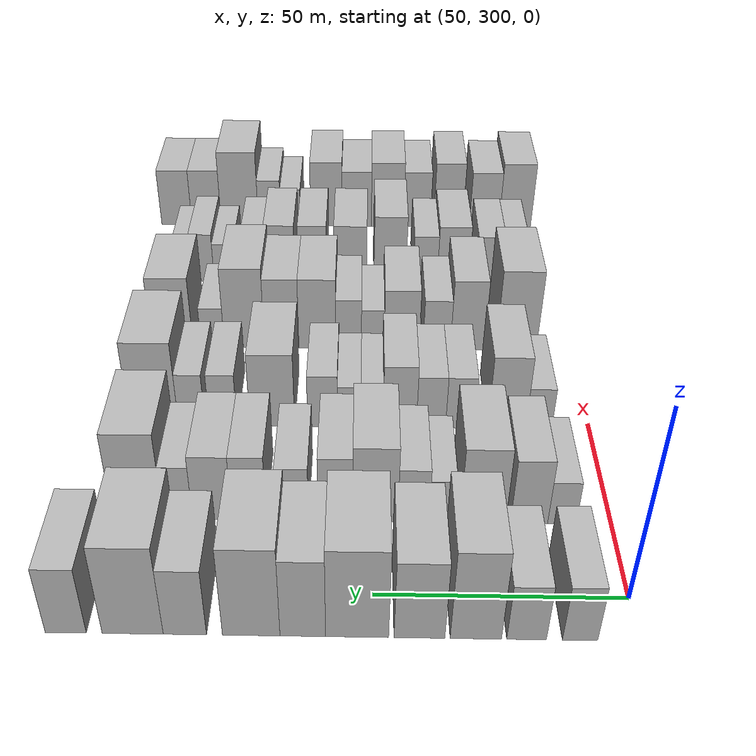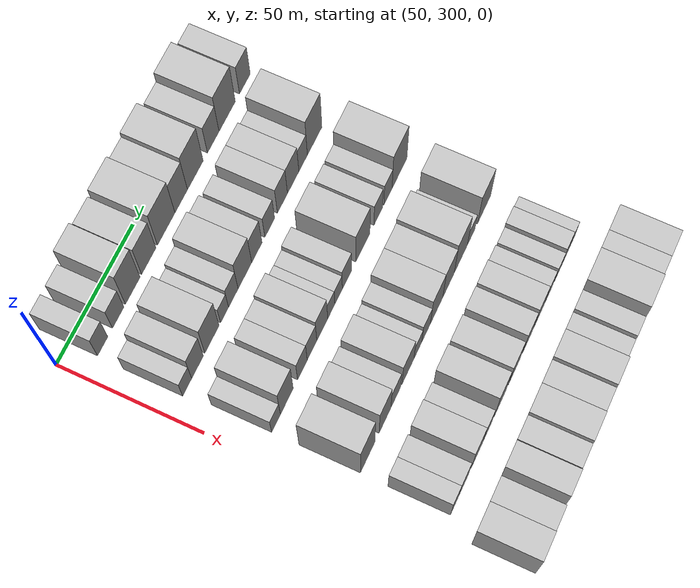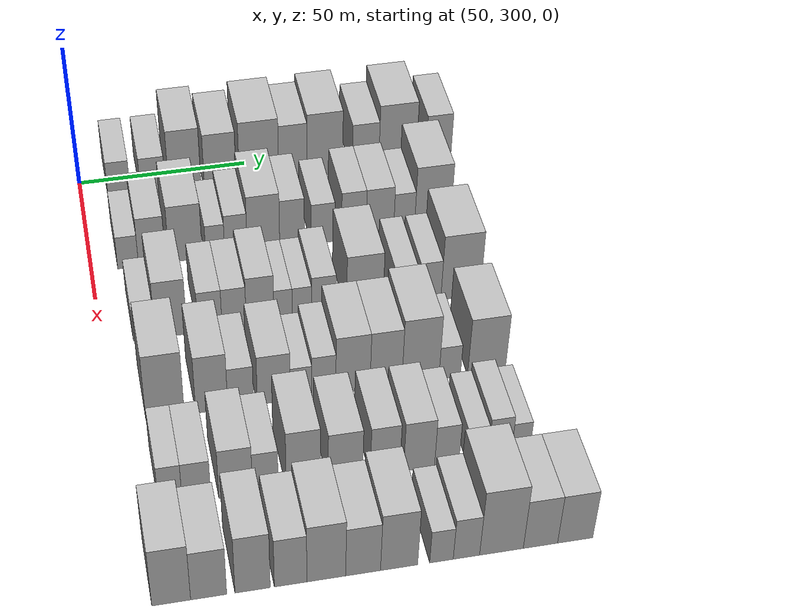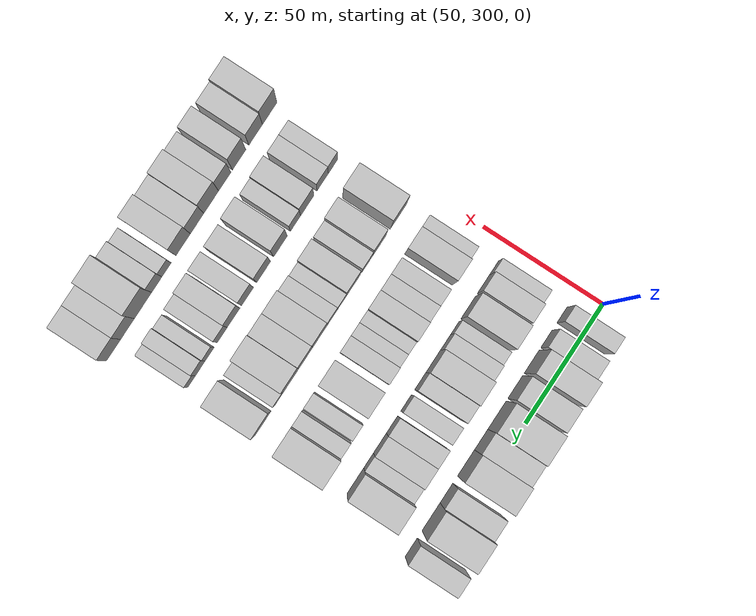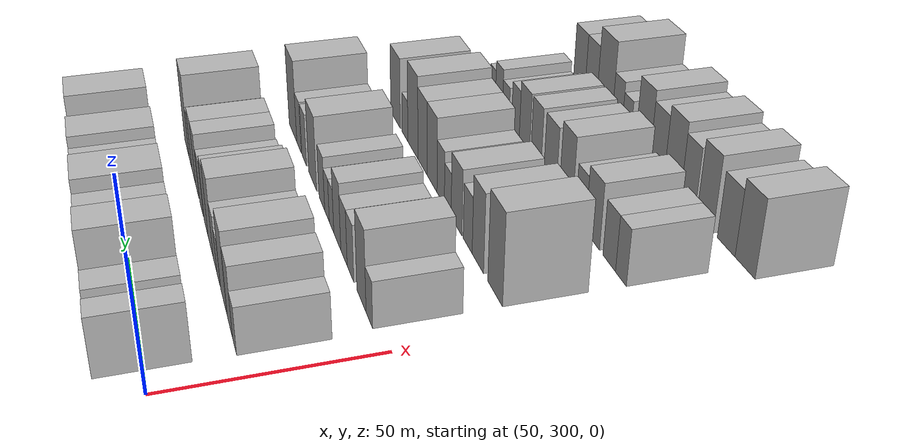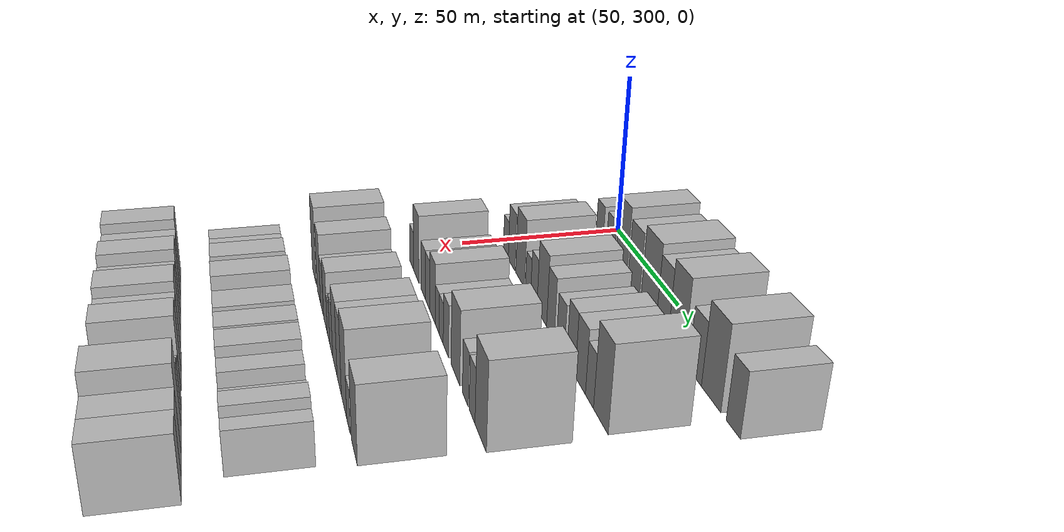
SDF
<sdf version="1.6">
 <world name="default">
  <model name="building_93">
   <static>1</static>
   <pose>50.0000 311.0892 0 0.000000 0.000000 0.000000</pose>
   <link name="link">
    <pose>0 0 7.50 0 0 0</pose>
    <collision name="collision"><geometry><box><size>20.0000 6.6241 15.0000</size></box></geometry></collision>
    <visual name="visual">
     <cast_shadows>0</cast_shadows>
     <geometry><box><size>20.0000 6.6241 15.0000</size></box></geometry>
     <material>
      <script>
       <uri>model://HANNAS_wall/materials/scripts</uri>
       <uri>model://HANNAS_wall/materials/textures</uri>
       <name>vrc/HANNAS_wall</name>
      </script>
     </material>
    </visual>
   </link>
  </model>
  <model name="building_94">
   <static>1</static>
   <pose>50.0000 321.1216 0 0.000000 0.000000 0.000000</pose>
   <link name="link">
    <pose>0 0 7.50 0 0 0</pose>
    <collision name="collision"><geometry><box><size>20.0000 7.4407 15.0000</size></box></geometry></collision>
    <visual name="visual">
     <cast_shadows>0</cast_shadows>
     <geometry><box><size>20.0000 7.4407 15.0000</size></box></geometry>
     <material>
      <script>
       <uri>model://HANNAS_wall/materials/scripts</uri>
       <uri>model://HANNAS_wall/materials/textures</uri>
       <name>vrc/HANNAS_wall</name>
      </script>
     </material>
    </visual>
   </link>
  </model>
  <model name="building_95">
   <static>1</static>
   <pose>50.0000 330.6634 0 0.000000 0.000000 0.000000</pose>
   <link name="link">
    <pose>0 0 12.00 0 0 0</pose>
    <collision name="collision"><geometry><box><size>20.0000 9.6430 24.0000</size></box></geometry></collision>
    <visual name="visual">
     <cast_shadows>0</cast_shadows>
     <geometry><box><size>20.0000 9.6430 24.0000</size></box></geometry>
     <material>
      <script>
       <uri>model://HANNAS_wall/materials/scripts</uri>
       <uri>model://HANNAS_wall/materials/textures</uri>
       <name>vrc/HANNAS_wall</name>
      </script>
     </material>
    </visual>
   </link>
  </model>
  <model name="building_96">
   <static>1</static>
   <pose>50.0000 341.2719 0 0.000000 0.000000 0.000000</pose>
   <link name="link">
    <pose>0 0 10.50 0 0 0</pose>
    <collision name="collision"><geometry><box><size>20.0000 9.5740 21.0000</size></box></geometry></collision>
    <visual name="visual">
     <cast_shadows>0</cast_shadows>
     <geometry><box><size>20.0000 9.5740 21.0000</size></box></geometry>
     <material>
      <script>
       <uri>model://HANNAS_wall/materials/scripts</uri>
       <uri>model://HANNAS_wall/materials/textures</uri>
       <name>vrc/HANNAS_wall</name>
      </script>
     </material>
    </visual>
   </link>
  </model>
  <model name="building_97">
   <static>1</static>
   <pose>50.0000 353.0000 0 0.000000 0.000000 0.000000</pose>
   <link name="link">
    <pose>0 0 12.00 0 0 0</pose>
    <collision name="collision"><geometry><box><size>20.0000 11.8821 24.0000</size></box></geometry></collision>
    <visual name="visual">
     <cast_shadows>0</cast_shadows>
     <geometry><box><size>20.0000 11.8821 24.0000</size></box></geometry>
     <material>
      <script>
       <uri>model://HANNAS_wall/materials/scripts</uri>
       <uri>model://HANNAS_wall/materials/textures</uri>
       <name>vrc/HANNAS_wall</name>
      </script>
     </material>
    </visual>
   </link>
  </model>
  <model name="building_98">
   <static>1</static>
   <pose>50.0000 363.2446 0 0.000000 0.000000 0.000000</pose>
   <link name="link">
    <pose>0 0 10.50 0 0 0</pose>
    <collision name="collision"><geometry><box><size>20.0000 8.6070 21.0000</size></box></geometry></collision>
    <visual name="visual">
     <cast_shadows>0</cast_shadows>
     <geometry><box><size>20.0000 8.6070 21.0000</size></box></geometry>
     <material>
      <script>
       <uri>model://HANNAS_wall/materials/scripts</uri>
       <uri>model://HANNAS_wall/materials/textures</uri>
       <name>vrc/HANNAS_wall</name>
      </script>
     </material>
    </visual>
   </link>
  </model>
  <model name="building_99">
   <static>1</static>
   <pose>50.0000 372.9853 0 0.000000 0.000000 0.000000</pose>
   <link name="link">
    <pose>0 0 12.00 0 0 0</pose>
    <collision name="collision"><geometry><box><size>20.0000 10.8745 24.0000</size></box></geometry></collision>
    <visual name="visual">
     <cast_shadows>0</cast_shadows>
     <geometry><box><size>20.0000 10.8745 24.0000</size></box></geometry>
     <material>
      <script>
       <uri>model://HANNAS_wall/materials/scripts</uri>
       <uri>model://HANNAS_wall/materials/textures</uri>
       <name>vrc/HANNAS_wall</name>
      </script>
     </material>
    </visual>
   </link>
  </model>
  <model name="building_100">
   <static>1</static>
   <pose>50.0000 385.5230 0 0.000000 0.000000 0.000000</pose>
   <link name="link">
    <pose>0 0 9.00 0 0 0</pose>
    <collision name="collision"><geometry><box><size>20.0000 8.2008 18.0000</size></box></geometry></collision>
    <visual name="visual">
     <cast_shadows>0</cast_shadows>
     <geometry><box><size>20.0000 8.2008 18.0000</size></box></geometry>
     <material>
      <script>
       <uri>model://HANNAS_wall/materials/scripts</uri>
       <uri>model://HANNAS_wall/materials/textures</uri>
       <name>vrc/HANNAS_wall</name>
      </script>
     </material>
    </visual>
   </link>
  </model>
  <model name="building_101">
   <static>1</static>
   <pose>50.0000 395.4213 0 0.000000 0.000000 0.000000</pose>
   <link name="link">
    <pose>0 0 12.00 0 0 0</pose>
    <collision name="collision"><geometry><box><size>20.0000 11.5959 24.0000</size></box></geometry></collision>
    <visual name="visual">
     <cast_shadows>0</cast_shadows>
     <geometry><box><size>20.0000 11.5959 24.0000</size></box></geometry>
     <material>
      <script>
       <uri>model://HANNAS_wall/materials/scripts</uri>
       <uri>model://HANNAS_wall/materials/textures</uri>
       <name>vrc/HANNAS_wall</name>
      </script>
     </material>
    </visual>
   </link>
  </model>
  <model name="building_102">
   <static>1</static>
   <pose>50.0000 408.1206 0 0.000000 0.000000 0.000000</pose>
   <link name="link">
    <pose>0 0 9.00 0 0 0</pose>
    <collision name="collision"><geometry><box><size>20.0000 7.8028 18.0000</size></box></geometry></collision>
    <visual name="visual">
     <cast_shadows>0</cast_shadows>
     <geometry><box><size>20.0000 7.8028 18.0000</size></box></geometry>
     <material>
      <script>
       <uri>model://HANNAS_wall/materials/scripts</uri>
       <uri>model://HANNAS_wall/materials/textures</uri>
       <name>vrc/HANNAS_wall</name>
      </script>
     </material>
    </visual>
   </link>
  </model>
  <model name="building_206">
   <static>1</static>
   <pose>79.0000 310.3980 0 0.000000 0.000000 0.000000</pose>
   <link name="link">
    <pose>0 0 6.00 0 0 0</pose>
    <collision name="collision"><geometry><box><size>20.0000 5.9657 12.0000</size></box></geometry></collision>
    <visual name="visual">
     <cast_shadows>0</cast_shadows>
     <geometry><box><size>20.0000 5.9657 12.0000</size></box></geometry>
     <material>
      <script>
       <uri>model://HANNAS_wall/materials/scripts</uri>
       <uri>model://HANNAS_wall/materials/textures</uri>
       <name>vrc/HANNAS_wall</name>
      </script>
     </material>
    </visual>
   </link>
  </model>
  <model name="building_207">
   <static>1</static>
   <pose>79.0000 317.2616 0 0.000000 0.000000 0.000000</pose>
   <link name="link">
    <pose>0 0 9.00 0 0 0</pose>
    <collision name="collision"><geometry><box><size>20.0000 7.7615 18.0000</size></box></geometry></collision>
    <visual name="visual">
     <cast_shadows>0</cast_shadows>
     <geometry><box><size>20.0000 7.7615 18.0000</size></box></geometry>
     <material>
      <script>
       <uri>model://HANNAS_wall/materials/scripts</uri>
       <uri>model://HANNAS_wall/materials/textures</uri>
       <name>vrc/HANNAS_wall</name>
      </script>
     </material>
    </visual>
   </link>
  </model>
  <model name="building_208">
   <static>1</static>
   <pose>79.0000 326.9318 0 0.000000 0.000000 0.000000</pose>
   <link name="link">
    <pose>0 0 10.50 0 0 0</pose>
    <collision name="collision"><geometry><box><size>20.0000 9.5789 21.0000</size></box></geometry></collision>
    <visual name="visual">
     <cast_shadows>0</cast_shadows>
     <geometry><box><size>20.0000 9.5789 21.0000</size></box></geometry>
     <material>
      <script>
       <uri>model://HANNAS_wall/materials/scripts</uri>
       <uri>model://HANNAS_wall/materials/textures</uri>
       <name>vrc/HANNAS_wall</name>
      </script>
     </material>
    </visual>
   </link>
  </model>
  <model name="building_209">
   <static>1</static>
   <pose>79.0000 335.4626 0 0.000000 0.000000 0.000000</pose>
   <link name="link">
    <pose>0 0 6.00 0 0 0</pose>
    <collision name="collision"><geometry><box><size>20.0000 5.4826 12.0000</size></box></geometry></collision>
    <visual name="visual">
     <cast_shadows>0</cast_shadows>
     <geometry><box><size>20.0000 5.4826 12.0000</size></box></geometry>
     <material>
      <script>
       <uri>model://HANNAS_wall/materials/scripts</uri>
       <uri>model://HANNAS_wall/materials/textures</uri>
       <name>vrc/HANNAS_wall</name>
      </script>
     </material>
    </visual>
   </link>
  </model>
  <model name="building_210">
   <static>1</static>
   <pose>79.0000 341.4721 0 0.000000 0.000000 0.000000</pose>
   <link name="link">
    <pose>0 0 7.50 0 0 0</pose>
    <collision name="collision"><geometry><box><size>20.0000 6.5364 15.0000</size></box></geometry></collision>
    <visual name="visual">
     <cast_shadows>0</cast_shadows>
     <geometry><box><size>20.0000 6.5364 15.0000</size></box></geometry>
     <material>
      <script>
       <uri>model://HANNAS_wall/materials/scripts</uri>
       <uri>model://HANNAS_wall/materials/textures</uri>
       <name>vrc/HANNAS_wall</name>
      </script>
     </material>
    </visual>
   </link>
  </model>
  <model name="building_211">
   <static>1</static>
   <pose>79.0000 349.4715 0 0.000000 0.000000 0.000000</pose>
   <link name="link">
    <pose>0 0 10.50 0 0 0</pose>
    <collision name="collision"><geometry><box><size>20.0000 9.4624 21.0000</size></box></geometry></collision>
    <visual name="visual">
     <cast_shadows>0</cast_shadows>
     <geometry><box><size>20.0000 9.4624 21.0000</size></box></geometry>
     <material>
      <script>
       <uri>model://HANNAS_wall/materials/scripts</uri>
       <uri>model://HANNAS_wall/materials/textures</uri>
       <name>vrc/HANNAS_wall</name>
      </script>
     </material>
    </visual>
   </link>
  </model>
  <model name="building_212">
   <static>1</static>
   <pose>79.0000 357.8078 0 0.000000 0.000000 0.000000</pose>
   <link name="link">
    <pose>0 0 9.00 0 0 0</pose>
    <collision name="collision"><geometry><box><size>20.0000 7.2101 18.0000</size></box></geometry></collision>
    <visual name="visual">
     <cast_shadows>0</cast_shadows>
     <geometry><box><size>20.0000 7.2101 18.0000</size></box></geometry>
     <material>
      <script>
       <uri>model://HANNAS_wall/materials/scripts</uri>
       <uri>model://HANNAS_wall/materials/textures</uri>
       <name>vrc/HANNAS_wall</name>
      </script>
     </material>
    </visual>
   </link>
  </model>
  <model name="building_213">
   <static>1</static>
   <pose>79.0000 366.8582 0 0.000000 0.000000 0.000000</pose>
   <link name="link">
    <pose>0 0 7.50 0 0 0</pose>
    <collision name="collision"><geometry><box><size>20.0000 6.8907 15.0000</size></box></geometry></collision>
    <visual name="visual">
     <cast_shadows>0</cast_shadows>
     <geometry><box><size>20.0000 6.8907 15.0000</size></box></geometry>
     <material>
      <script>
       <uri>model://HANNAS_wall/materials/scripts</uri>
       <uri>model://HANNAS_wall/materials/textures</uri>
       <name>vrc/HANNAS_wall</name>
      </script>
     </material>
    </visual>
   </link>
  </model>
  <model name="building_214">
   <static>1</static>
   <pose>79.0000 375.9228 0 0.000000 0.000000 0.000000</pose>
   <link name="link">
    <pose>0 0 9.00 0 0 0</pose>
    <collision name="collision"><geometry><box><size>20.0000 7.2384 18.0000</size></box></geometry></collision>
    <visual name="visual">
     <cast_shadows>0</cast_shadows>
     <geometry><box><size>20.0000 7.2384 18.0000</size></box></geometry>
     <material>
      <script>
       <uri>model://HANNAS_wall/materials/scripts</uri>
       <uri>model://HANNAS_wall/materials/textures</uri>
       <name>vrc/HANNAS_wall</name>
      </script>
     </material>
    </visual>
   </link>
  </model>
  <model name="building_215">
   <static>1</static>
   <pose>79.0000 383.6614 0 0.000000 0.000000 0.000000</pose>
   <link name="link">
    <pose>0 0 9.00 0 0 0</pose>
    <collision name="collision"><geometry><box><size>20.0000 8.2389 18.0000</size></box></geometry></collision>
    <visual name="visual">
     <cast_shadows>0</cast_shadows>
     <geometry><box><size>20.0000 8.2389 18.0000</size></box></geometry>
     <material>
      <script>
       <uri>model://HANNAS_wall/materials/scripts</uri>
       <uri>model://HANNAS_wall/materials/textures</uri>
       <name>vrc/HANNAS_wall</name>
      </script>
     </material>
    </visual>
   </link>
  </model>
  <model name="building_216">
   <static>1</static>
   <pose>79.0000 390.8860 0 0.000000 0.000000 0.000000</pose>
   <link name="link">
    <pose>0 0 7.50 0 0 0</pose>
    <collision name="collision"><geometry><box><size>20.0000 6.2103 15.0000</size></box></geometry></collision>
    <visual name="visual">
     <cast_shadows>0</cast_shadows>
     <geometry><box><size>20.0000 6.2103 15.0000</size></box></geometry>
     <material>
      <script>
       <uri>model://HANNAS_wall/materials/scripts</uri>
       <uri>model://HANNAS_wall/materials/textures</uri>
       <name>vrc/HANNAS_wall</name>
      </script>
     </material>
    </visual>
   </link>
  </model>
  <model name="building_217">
   <static>1</static>
   <pose>79.0000 399.3479 0 0.000000 0.000000 0.000000</pose>
   <link name="link">
    <pose>0 0 12.00 0 0 0</pose>
    <collision name="collision"><geometry><box><size>20.0000 10.7135 24.0000</size></box></geometry></collision>
    <visual name="visual">
     <cast_shadows>0</cast_shadows>
     <geometry><box><size>20.0000 10.7135 24.0000</size></box></geometry>
     <material>
      <script>
       <uri>model://HANNAS_wall/materials/scripts</uri>
       <uri>model://HANNAS_wall/materials/textures</uri>
       <name>vrc/HANNAS_wall</name>
      </script>
     </material>
    </visual>
   </link>
  </model>
  <model name="building_324">
   <static>1</static>
   <pose>108.0000 311.6133 0 0.000000 0.000000 0.000000</pose>
   <link name="link">
    <pose>0 0 6.00 0 0 0</pose>
    <collision name="collision"><geometry><box><size>20.0000 5.9825 12.0000</size></box></geometry></collision>
    <visual name="visual">
     <cast_shadows>0</cast_shadows>
     <geometry><box><size>20.0000 5.9825 12.0000</size></box></geometry>
     <material>
      <script>
       <uri>model://HANNAS_wall/materials/scripts</uri>
       <uri>model://HANNAS_wall/materials/textures</uri>
       <name>vrc/HANNAS_wall</name>
      </script>
     </material>
    </visual>
   </link>
  </model>
  <model name="building_325">
   <static>1</static>
   <pose>108.0000 318.9940 0 0.000000 0.000000 0.000000</pose>
   <link name="link">
    <pose>0 0 10.50 0 0 0</pose>
    <collision name="collision"><geometry><box><size>20.0000 8.7790 21.0000</size></box></geometry></collision>
    <visual name="visual">
     <cast_shadows>0</cast_shadows>
     <geometry><box><size>20.0000 8.7790 21.0000</size></box></geometry>
     <material>
      <script>
       <uri>model://HANNAS_wall/materials/scripts</uri>
       <uri>model://HANNAS_wall/materials/textures</uri>
       <name>vrc/HANNAS_wall</name>
      </script>
     </material>
    </visual>
   </link>
  </model>
  <model name="building_326">
   <static>1</static>
   <pose>108.0000 329.7306 0 0.000000 0.000000 0.000000</pose>
   <link name="link">
    <pose>0 0 7.50 0 0 0</pose>
    <collision name="collision"><geometry><box><size>20.0000 6.6942 15.0000</size></box></geometry></collision>
    <visual name="visual">
     <cast_shadows>0</cast_shadows>
     <geometry><box><size>20.0000 6.6942 15.0000</size></box></geometry>
     <material>
      <script>
       <uri>model://HANNAS_wall/materials/scripts</uri>
       <uri>model://HANNAS_wall/materials/textures</uri>
       <name>vrc/HANNAS_wall</name>
      </script>
     </material>
    </visual>
   </link>
  </model>
  <model name="building_327">
   <static>1</static>
   <pose>108.0000 336.4426 0 0.000000 0.000000 0.000000</pose>
   <link name="link">
    <pose>0 0 7.50 0 0 0</pose>
    <collision name="collision"><geometry><box><size>20.0000 6.7298 15.0000</size></box></geometry></collision>
    <visual name="visual">
     <cast_shadows>0</cast_shadows>
     <geometry><box><size>20.0000 6.7298 15.0000</size></box></geometry>
     <material>
      <script>
       <uri>model://HANNAS_wall/materials/scripts</uri>
       <uri>model://HANNAS_wall/materials/textures</uri>
       <name>vrc/HANNAS_wall</name>
      </script>
     </material>
    </visual>
   </link>
  </model>
  <model name="building_328">
   <static>1</static>
   <pose>108.0000 343.6723 0 0.000000 0.000000 0.000000</pose>
   <link name="link">
    <pose>0 0 9.00 0 0 0</pose>
    <collision name="collision"><geometry><box><size>20.0000 7.7295 18.0000</size></box></geometry></collision>
    <visual name="visual">
     <cast_shadows>0</cast_shadows>
     <geometry><box><size>20.0000 7.7295 18.0000</size></box></geometry>
     <material>
      <script>
       <uri>model://HANNAS_wall/materials/scripts</uri>
       <uri>model://HANNAS_wall/materials/textures</uri>
       <name>vrc/HANNAS_wall</name>
      </script>
     </material>
    </visual>
   </link>
  </model>
  <model name="building_329">
   <static>1</static>
   <pose>108.0000 350.0870 0 0.000000 0.000000 0.000000</pose>
   <link name="link">
    <pose>0 0 6.00 0 0 0</pose>
    <collision name="collision"><geometry><box><size>20.0000 5.1001 12.0000</size></box></geometry></collision>
    <visual name="visual">
     <cast_shadows>0</cast_shadows>
     <geometry><box><size>20.0000 5.1001 12.0000</size></box></geometry>
     <material>
      <script>
       <uri>model://HANNAS_wall/materials/scripts</uri>
       <uri>model://HANNAS_wall/materials/textures</uri>
       <name>vrc/HANNAS_wall</name>
      </script>
     </material>
    </visual>
   </link>
  </model>
  <model name="building_330">
   <static>1</static>
   <pose>108.0000 355.3480 0 0.000000 0.000000 0.000000</pose>
   <link name="link">
    <pose>0 0 6.00 0 0 0</pose>
    <collision name="collision"><geometry><box><size>20.0000 5.4219 12.0000</size></box></geometry></collision>
    <visual name="visual">
     <cast_shadows>0</cast_shadows>
     <geometry><box><size>20.0000 5.4219 12.0000</size></box></geometry>
     <material>
      <script>
       <uri>model://HANNAS_wall/materials/scripts</uri>
       <uri>model://HANNAS_wall/materials/textures</uri>
       <name>vrc/HANNAS_wall</name>
      </script>
     </material>
    </visual>
   </link>
  </model>
  <model name="building_331">
   <static>1</static>
   <pose>108.0000 361.4825 0 0.000000 0.000000 0.000000</pose>
   <link name="link">
    <pose>0 0 7.50 0 0 0</pose>
    <collision name="collision"><geometry><box><size>20.0000 6.8471 15.0000</size></box></geometry></collision>
    <visual name="visual">
     <cast_shadows>0</cast_shadows>
     <geometry><box><size>20.0000 6.8471 15.0000</size></box></geometry>
     <material>
      <script>
       <uri>model://HANNAS_wall/materials/scripts</uri>
       <uri>model://HANNAS_wall/materials/textures</uri>
       <name>vrc/HANNAS_wall</name>
      </script>
     </material>
    </visual>
   </link>
  </model>
  <model name="building_332">
   <static>1</static>
   <pose>108.0000 373.0764 0 0.000000 0.000000 0.000000</pose>
   <link name="link">
    <pose>0 0 10.50 0 0 0</pose>
    <collision name="collision"><geometry><box><size>20.0000 10.3407 21.0000</size></box></geometry></collision>
    <visual name="visual">
     <cast_shadows>0</cast_shadows>
     <geometry><box><size>20.0000 10.3407 21.0000</size></box></geometry>
     <material>
      <script>
       <uri>model://HANNAS_wall/materials/scripts</uri>
       <uri>model://HANNAS_wall/materials/textures</uri>
       <name>vrc/HANNAS_wall</name>
      </script>
     </material>
    </visual>
   </link>
  </model>
  <model name="building_333">
   <static>1</static>
   <pose>108.0000 384.4453 0 0.000000 0.000000 0.000000</pose>
   <link name="link">
    <pose>0 0 7.50 0 0 0</pose>
    <collision name="collision"><geometry><box><size>20.0000 6.3972 15.0000</size></box></geometry></collision>
    <visual name="visual">
     <cast_shadows>0</cast_shadows>
     <geometry><box><size>20.0000 6.3972 15.0000</size></box></geometry>
     <material>
      <script>
       <uri>model://HANNAS_wall/materials/scripts</uri>
       <uri>model://HANNAS_wall/materials/textures</uri>
       <name>vrc/HANNAS_wall</name>
      </script>
     </material>
    </visual>
   </link>
  </model>
  <model name="building_334">
   <static>1</static>
   <pose>108.0000 391.7307 0 0.000000 0.000000 0.000000</pose>
   <link name="link">
    <pose>0 0 7.50 0 0 0</pose>
    <collision name="collision"><geometry><box><size>20.0000 6.1737 15.0000</size></box></geometry></collision>
    <visual name="visual">
     <cast_shadows>0</cast_shadows>
     <geometry><box><size>20.0000 6.1737 15.0000</size></box></geometry>
     <material>
      <script>
       <uri>model://HANNAS_wall/materials/scripts</uri>
       <uri>model://HANNAS_wall/materials/textures</uri>
       <name>vrc/HANNAS_wall</name>
      </script>
     </material>
    </visual>
   </link>
  </model>
  <model name="building_335">
   <static>1</static>
   <pose>108.0000 400.4672 0 0.000000 0.000000 0.000000</pose>
   <link name="link">
    <pose>0 0 12.00 0 0 0</pose>
    <collision name="collision"><geometry><box><size>20.0000 11.2993 24.0000</size></box></geometry></collision>
    <visual name="visual">
     <cast_shadows>0</cast_shadows>
     <geometry><box><size>20.0000 11.2993 24.0000</size></box></geometry>
     <material>
      <script>
       <uri>model://HANNAS_wall/materials/scripts</uri>
       <uri>model://HANNAS_wall/materials/textures</uri>
       <name>vrc/HANNAS_wall</name>
      </script>
     </material>
    </visual>
   </link>
  </model>
  <model name="building_436">
   <static>1</static>
   <pose>137.0000 313.6849 0 0.000000 0.000000 0.000000</pose>
   <link name="link">
    <pose>0 0 12.00 0 0 0</pose>
    <collision name="collision"><geometry><box><size>20.0000 10.1424 24.0000</size></box></geometry></collision>
    <visual name="visual">
     <cast_shadows>0</cast_shadows>
     <geometry><box><size>20.0000 10.1424 24.0000</size></box></geometry>
     <material>
      <script>
       <uri>model://HANNAS_wall/materials/scripts</uri>
       <uri>model://HANNAS_wall/materials/textures</uri>
       <name>vrc/HANNAS_wall</name>
      </script>
     </material>
    </visual>
   </link>
  </model>
  <model name="building_437">
   <static>1</static>
   <pose>137.0000 325.9992 0 0.000000 0.000000 0.000000</pose>
   <link name="link">
    <pose>0 0 10.50 0 0 0</pose>
    <collision name="collision"><geometry><box><size>20.0000 8.4862 21.0000</size></box></geometry></collision>
    <visual name="visual">
     <cast_shadows>0</cast_shadows>
     <geometry><box><size>20.0000 8.4862 21.0000</size></box></geometry>
     <material>
      <script>
       <uri>model://HANNAS_wall/materials/scripts</uri>
       <uri>model://HANNAS_wall/materials/textures</uri>
       <name>vrc/HANNAS_wall</name>
      </script>
     </material>
    </visual>
   </link>
  </model>
  <model name="building_438">
   <static>1</static>
   <pose>137.0000 333.6845 0 0.000000 0.000000 0.000000</pose>
   <link name="link">
    <pose>0 0 7.50 0 0 0</pose>
    <collision name="collision"><geometry><box><size>20.0000 6.8843 15.0000</size></box></geometry></collision>
    <visual name="visual">
     <cast_shadows>0</cast_shadows>
     <geometry><box><size>20.0000 6.8843 15.0000</size></box></geometry>
     <material>
      <script>
       <uri>model://HANNAS_wall/materials/scripts</uri>
       <uri>model://HANNAS_wall/materials/textures</uri>
       <name>vrc/HANNAS_wall</name>
      </script>
     </material>
    </visual>
   </link>
  </model>
  <model name="building_439">
   <static>1</static>
   <pose>137.0000 342.5412 0 0.000000 0.000000 0.000000</pose>
   <link name="link">
    <pose>0 0 9.00 0 0 0</pose>
    <collision name="collision"><geometry><box><size>20.0000 8.8290 18.0000</size></box></geometry></collision>
    <visual name="visual">
     <cast_shadows>0</cast_shadows>
     <geometry><box><size>20.0000 8.8290 18.0000</size></box></geometry>
     <material>
      <script>
       <uri>model://HANNAS_wall/materials/scripts</uri>
       <uri>model://HANNAS_wall/materials/textures</uri>
       <name>vrc/HANNAS_wall</name>
      </script>
     </material>
    </visual>
   </link>
  </model>
  <model name="building_440">
   <static>1</static>
   <pose>137.0000 349.8180 0 0.000000 0.000000 0.000000</pose>
   <link name="link">
    <pose>0 0 6.00 0 0 0</pose>
    <collision name="collision"><geometry><box><size>20.0000 5.7248 12.0000</size></box></geometry></collision>
    <visual name="visual">
     <cast_shadows>0</cast_shadows>
     <geometry><box><size>20.0000 5.7248 12.0000</size></box></geometry>
     <material>
      <script>
       <uri>model://HANNAS_wall/materials/scripts</uri>
       <uri>model://HANNAS_wall/materials/textures</uri>
       <name>vrc/HANNAS_wall</name>
      </script>
     </material>
    </visual>
   </link>
  </model>
  <model name="building_441">
   <static>1</static>
   <pose>137.0000 355.8951 0 0.000000 0.000000 0.000000</pose>
   <link name="link">
    <pose>0 0 7.50 0 0 0</pose>
    <collision name="collision"><geometry><box><size>20.0000 6.4293 15.0000</size></box></geometry></collision>
    <visual name="visual">
     <cast_shadows>0</cast_shadows>
     <geometry><box><size>20.0000 6.4293 15.0000</size></box></geometry>
     <material>
      <script>
       <uri>model://HANNAS_wall/materials/scripts</uri>
       <uri>model://HANNAS_wall/materials/textures</uri>
       <name>vrc/HANNAS_wall</name>
      </script>
     </material>
    </visual>
   </link>
  </model>
  <model name="building_442">
   <static>1</static>
   <pose>137.0000 363.7581 0 0.000000 0.000000 0.000000</pose>
   <link name="link">
    <pose>0 0 10.50 0 0 0</pose>
    <collision name="collision"><geometry><box><size>20.0000 9.2966 21.0000</size></box></geometry></collision>
    <visual name="visual">
     <cast_shadows>0</cast_shadows>
     <geometry><box><size>20.0000 9.2966 21.0000</size></box></geometry>
     <material>
      <script>
       <uri>model://HANNAS_wall/materials/scripts</uri>
       <uri>model://HANNAS_wall/materials/textures</uri>
       <name>vrc/HANNAS_wall</name>
      </script>
     </material>
    </visual>
   </link>
  </model>
  <model name="building_443">
   <static>1</static>
   <pose>137.0000 372.7485 0 0.000000 0.000000 0.000000</pose>
   <link name="link">
    <pose>0 0 10.50 0 0 0</pose>
    <collision name="collision"><geometry><box><size>20.0000 8.6843 21.0000</size></box></geometry></collision>
    <visual name="visual">
     <cast_shadows>0</cast_shadows>
     <geometry><box><size>20.0000 8.6843 21.0000</size></box></geometry>
     <material>
      <script>
       <uri>model://HANNAS_wall/materials/scripts</uri>
       <uri>model://HANNAS_wall/materials/textures</uri>
       <name>vrc/HANNAS_wall</name>
      </script>
     </material>
    </visual>
   </link>
  </model>
  <model name="building_444">
   <static>1</static>
   <pose>137.0000 382.1605 0 0.000000 0.000000 0.000000</pose>
   <link name="link">
    <pose>0 0 12.00 0 0 0</pose>
    <collision name="collision"><geometry><box><size>20.0000 10.1395 24.0000</size></box></geometry></collision>
    <visual name="visual">
     <cast_shadows>0</cast_shadows>
     <geometry><box><size>20.0000 10.1395 24.0000</size></box></geometry>
     <material>
      <script>
       <uri>model://HANNAS_wall/materials/scripts</uri>
       <uri>model://HANNAS_wall/materials/textures</uri>
       <name>vrc/HANNAS_wall</name>
      </script>
     </material>
    </visual>
   </link>
  </model>
  <model name="building_445">
   <static>1</static>
   <pose>137.0000 390.1843 0 0.000000 0.000000 0.000000</pose>
   <link name="link">
    <pose>0 0 6.00 0 0 0</pose>
    <collision name="collision"><geometry><box><size>20.0000 5.9081 12.0000</size></box></geometry></collision>
    <visual name="visual">
     <cast_shadows>0</cast_shadows>
     <geometry><box><size>20.0000 5.9081 12.0000</size></box></geometry>
     <material>
      <script>
       <uri>model://HANNAS_wall/materials/scripts</uri>
       <uri>model://HANNAS_wall/materials/textures</uri>
       <name>vrc/HANNAS_wall</name>
      </script>
     </material>
    </visual>
   </link>
  </model>
  <model name="building_446">
   <static>1</static>
   <pose>137.0000 400.3447 0 0.000000 0.000000 0.000000</pose>
   <link name="link">
    <pose>0 0 10.50 0 0 0</pose>
    <collision name="collision"><geometry><box><size>20.0000 10.4126 21.0000</size></box></geometry></collision>
    <visual name="visual">
     <cast_shadows>0</cast_shadows>
     <geometry><box><size>20.0000 10.4126 21.0000</size></box></geometry>
     <material>
      <script>
       <uri>model://HANNAS_wall/materials/scripts</uri>
       <uri>model://HANNAS_wall/materials/textures</uri>
       <name>vrc/HANNAS_wall</name>
      </script>
     </material>
    </visual>
   </link>
  </model>
  <model name="building_551">
   <static>1</static>
   <pose>166.0000 311.3581 0 0.000000 0.000000 0.000000</pose>
   <link name="link">
    <pose>0 0 7.50 0 0 0</pose>
    <collision name="collision"><geometry><box><size>20.0000 6.0063 15.0000</size></box></geometry></collision>
    <visual name="visual">
     <cast_shadows>0</cast_shadows>
     <geometry><box><size>20.0000 6.0063 15.0000</size></box></geometry>
     <material>
      <script>
       <uri>model://HANNAS_wall/materials/scripts</uri>
       <uri>model://HANNAS_wall/materials/textures</uri>
       <name>vrc/HANNAS_wall</name>
      </script>
     </material>
    </visual>
   </link>
  </model>
  <model name="building_552">
   <static>1</static>
   <pose>166.0000 317.9672 0 0.000000 0.000000 0.000000</pose>
   <link name="link">
    <pose>0 0 7.50 0 0 0</pose>
    <collision name="collision"><geometry><box><size>20.0000 7.2120 15.0000</size></box></geometry></collision>
    <visual name="visual">
     <cast_shadows>0</cast_shadows>
     <geometry><box><size>20.0000 7.2120 15.0000</size></box></geometry>
     <material>
      <script>
       <uri>model://HANNAS_wall/materials/scripts</uri>
       <uri>model://HANNAS_wall/materials/textures</uri>
       <name>vrc/HANNAS_wall</name>
      </script>
     </material>
    </visual>
   </link>
  </model>
  <model name="building_553">
   <static>1</static>
   <pose>166.0000 327.8341 0 0.000000 0.000000 0.000000</pose>
   <link name="link">
    <pose>0 0 9.00 0 0 0</pose>
    <collision name="collision"><geometry><box><size>20.0000 8.5217 18.0000</size></box></geometry></collision>
    <visual name="visual">
     <cast_shadows>0</cast_shadows>
     <geometry><box><size>20.0000 8.5217 18.0000</size></box></geometry>
     <material>
      <script>
       <uri>model://HANNAS_wall/materials/scripts</uri>
       <uri>model://HANNAS_wall/materials/textures</uri>
       <name>vrc/HANNAS_wall</name>
      </script>
     </material>
    </visual>
   </link>
  </model>
  <model name="building_554">
   <static>1</static>
   <pose>166.0000 335.3745 0 0.000000 0.000000 0.000000</pose>
   <link name="link">
    <pose>0 0 7.50 0 0 0</pose>
    <collision name="collision"><geometry><box><size>20.0000 6.5592 15.0000</size></box></geometry></collision>
    <visual name="visual">
     <cast_shadows>0</cast_shadows>
     <geometry><box><size>20.0000 6.5592 15.0000</size></box></geometry>
     <material>
      <script>
       <uri>model://HANNAS_wall/materials/scripts</uri>
       <uri>model://HANNAS_wall/materials/textures</uri>
       <name>vrc/HANNAS_wall</name>
      </script>
     </material>
    </visual>
   </link>
  </model>
  <model name="building_555">
   <static>1</static>
   <pose>166.0000 345.0254 0 0.000000 0.000000 0.000000</pose>
   <link name="link">
    <pose>0 0 10.50 0 0 0</pose>
    <collision name="collision"><geometry><box><size>20.0000 8.7427 21.0000</size></box></geometry></collision>
    <visual name="visual">
     <cast_shadows>0</cast_shadows>
     <geometry><box><size>20.0000 8.7427 21.0000</size></box></geometry>
     <material>
      <script>
       <uri>model://HANNAS_wall/materials/scripts</uri>
       <uri>model://HANNAS_wall/materials/textures</uri>
       <name>vrc/HANNAS_wall</name>
      </script>
     </material>
    </visual>
   </link>
  </model>
  <model name="building_556">
   <static>1</static>
   <pose>166.0000 355.8418 0 0.000000 0.000000 0.000000</pose>
   <link name="link">
    <pose>0 0 9.00 0 0 0</pose>
    <collision name="collision"><geometry><box><size>20.0000 8.8901 18.0000</size></box></geometry></collision>
    <visual name="visual">
     <cast_shadows>0</cast_shadows>
     <geometry><box><size>20.0000 8.8901 18.0000</size></box></geometry>
     <material>
      <script>
       <uri>model://HANNAS_wall/materials/scripts</uri>
       <uri>model://HANNAS_wall/materials/textures</uri>
       <name>vrc/HANNAS_wall</name>
      </script>
     </material>
    </visual>
   </link>
  </model>
  <model name="building_557">
   <static>1</static>
   <pose>166.0000 366.1186 0 0.000000 0.000000 0.000000</pose>
   <link name="link">
    <pose>0 0 9.00 0 0 0</pose>
    <collision name="collision"><geometry><box><size>20.0000 7.6635 18.0000</size></box></geometry></collision>
    <visual name="visual">
     <cast_shadows>0</cast_shadows>
     <geometry><box><size>20.0000 7.6635 18.0000</size></box></geometry>
     <material>
      <script>
       <uri>model://HANNAS_wall/materials/scripts</uri>
       <uri>model://HANNAS_wall/materials/textures</uri>
       <name>vrc/HANNAS_wall</name>
      </script>
     </material>
    </visual>
   </link>
  </model>
  <model name="building_558">
   <static>1</static>
   <pose>166.0000 374.9989 0 0.000000 0.000000 0.000000</pose>
   <link name="link">
    <pose>0 0 9.00 0 0 0</pose>
    <collision name="collision"><geometry><box><size>20.0000 8.0970 18.0000</size></box></geometry></collision>
    <visual name="visual">
     <cast_shadows>0</cast_shadows>
     <geometry><box><size>20.0000 8.0970 18.0000</size></box></geometry>
     <material>
      <script>
       <uri>model://HANNAS_wall/materials/scripts</uri>
       <uri>model://HANNAS_wall/materials/textures</uri>
       <name>vrc/HANNAS_wall</name>
      </script>
     </material>
    </visual>
   </link>
  </model>
  <model name="building_559">
   <static>1</static>
   <pose>166.0000 382.2395 0 0.000000 0.000000 0.000000</pose>
   <link name="link">
    <pose>0 0 7.50 0 0 0</pose>
    <collision name="collision"><geometry><box><size>20.0000 6.3842 15.0000</size></box></geometry></collision>
    <visual name="visual">
     <cast_shadows>0</cast_shadows>
     <geometry><box><size>20.0000 6.3842 15.0000</size></box></geometry>
     <material>
      <script>
       <uri>model://HANNAS_wall/materials/scripts</uri>
       <uri>model://HANNAS_wall/materials/textures</uri>
       <name>vrc/HANNAS_wall</name>
      </script>
     </material>
    </visual>
   </link>
  </model>
  <model name="building_560">
   <static>1</static>
   <pose>166.0000 390.2648 0 0.000000 0.000000 0.000000</pose>
   <link name="link">
    <pose>0 0 6.00 0 0 0</pose>
    <collision name="collision"><geometry><box><size>20.0000 5.6664 12.0000</size></box></geometry></collision>
    <visual name="visual">
     <cast_shadows>0</cast_shadows>
     <geometry><box><size>20.0000 5.6664 12.0000</size></box></geometry>
     <material>
      <script>
       <uri>model://HANNAS_wall/materials/scripts</uri>
       <uri>model://HANNAS_wall/materials/textures</uri>
       <name>vrc/HANNAS_wall</name>
      </script>
     </material>
    </visual>
   </link>
  </model>
  <model name="building_561">
   <static>1</static>
   <pose>166.0000 396.1551 0 0.000000 0.000000 0.000000</pose>
   <link name="link">
    <pose>0 0 7.50 0 0 0</pose>
    <collision name="collision"><geometry><box><size>20.0000 6.1142 15.0000</size></box></geometry></collision>
    <visual name="visual">
     <cast_shadows>0</cast_shadows>
     <geometry><box><size>20.0000 6.1142 15.0000</size></box></geometry>
     <material>
      <script>
       <uri>model://HANNAS_wall/materials/scripts</uri>
       <uri>model://HANNAS_wall/materials/textures</uri>
       <name>vrc/HANNAS_wall</name>
      </script>
     </material>
    </visual>
   </link>
  </model>
  <model name="building_562">
   <static>1</static>
   <pose>166.0000 401.6598 0 0.000000 0.000000 0.000000</pose>
   <link name="link">
    <pose>0 0 6.00 0 0 0</pose>
    <collision name="collision"><geometry><box><size>20.0000 4.8953 12.0000</size></box></geometry></collision>
    <visual name="visual">
     <cast_shadows>0</cast_shadows>
     <geometry><box><size>20.0000 4.8953 12.0000</size></box></geometry>
     <material>
      <script>
       <uri>model://HANNAS_wall/materials/scripts</uri>
       <uri>model://HANNAS_wall/materials/textures</uri>
       <name>vrc/HANNAS_wall</name>
      </script>
     </material>
    </visual>
   </link>
  </model>
  <model name="building_665">
   <static>1</static>
   <pose>195.0000 307.8123 0 0.000000 0.000000 0.000000</pose>
   <link name="link">
    <pose>0 0 10.50 0 0 0</pose>
    <collision name="collision"><geometry><box><size>20.0000 9.3086 21.0000</size></box></geometry></collision>
    <visual name="visual">
     <cast_shadows>0</cast_shadows>
     <geometry><box><size>20.0000 9.3086 21.0000</size></box></geometry>
     <material>
      <script>
       <uri>model://HANNAS_wall/materials/scripts</uri>
       <uri>model://HANNAS_wall/materials/textures</uri>
       <name>vrc/HANNAS_wall</name>
      </script>
     </material>
    </visual>
   </link>
  </model>
  <model name="building_666">
   <static>1</static>
   <pose>195.0000 316.8022 0 0.000000 0.000000 0.000000</pose>
   <link name="link">
    <pose>0 0 9.00 0 0 0</pose>
    <collision name="collision"><geometry><box><size>20.0000 8.6712 18.0000</size></box></geometry></collision>
    <visual name="visual">
     <cast_shadows>0</cast_shadows>
     <geometry><box><size>20.0000 8.6712 18.0000</size></box></geometry>
     <material>
      <script>
       <uri>model://HANNAS_wall/materials/scripts</uri>
       <uri>model://HANNAS_wall/materials/textures</uri>
       <name>vrc/HANNAS_wall</name>
      </script>
     </material>
    </visual>
   </link>
  </model>
  <model name="building_667">
   <static>1</static>
   <pose>195.0000 327.4025 0 0.000000 0.000000 0.000000</pose>
   <link name="link">
    <pose>0 0 10.50 0 0 0</pose>
    <collision name="collision"><geometry><box><size>20.0000 8.5294 21.0000</size></box></geometry></collision>
    <visual name="visual">
     <cast_shadows>0</cast_shadows>
     <geometry><box><size>20.0000 8.5294 21.0000</size></box></geometry>
     <material>
      <script>
       <uri>model://HANNAS_wall/materials/scripts</uri>
       <uri>model://HANNAS_wall/materials/textures</uri>
       <name>vrc/HANNAS_wall</name>
      </script>
     </material>
    </visual>
   </link>
  </model>
  <model name="building_668">
   <static>1</static>
   <pose>195.0000 336.6052 0 0.000000 0.000000 0.000000</pose>
   <link name="link">
    <pose>0 0 9.00 0 0 0</pose>
    <collision name="collision"><geometry><box><size>20.0000 7.8761 18.0000</size></box></geometry></collision>
    <visual name="visual">
     <cast_shadows>0</cast_shadows>
     <geometry><box><size>20.0000 7.8761 18.0000</size></box></geometry>
     <material>
      <script>
       <uri>model://HANNAS_wall/materials/scripts</uri>
       <uri>model://HANNAS_wall/materials/textures</uri>
       <name>vrc/HANNAS_wall</name>
      </script>
     </material>
    </visual>
   </link>
  </model>
  <model name="building_669">
   <static>1</static>
   <pose>195.0000 345.2986 0 0.000000 0.000000 0.000000</pose>
   <link name="link">
    <pose>0 0 10.50 0 0 0</pose>
    <collision name="collision"><geometry><box><size>20.0000 9.5108 21.0000</size></box></geometry></collision>
    <visual name="visual">
     <cast_shadows>0</cast_shadows>
     <geometry><box><size>20.0000 9.5108 21.0000</size></box></geometry>
     <material>
      <script>
       <uri>model://HANNAS_wall/materials/scripts</uri>
       <uri>model://HANNAS_wall/materials/textures</uri>
       <name>vrc/HANNAS_wall</name>
      </script>
     </material>
    </visual>
   </link>
  </model>
  <model name="building_670">
   <static>1</static>
   <pose>195.0000 354.3598 0 0.000000 0.000000 0.000000</pose>
   <link name="link">
    <pose>0 0 9.00 0 0 0</pose>
    <collision name="collision"><geometry><box><size>20.0000 8.6115 18.0000</size></box></geometry></collision>
    <visual name="visual">
     <cast_shadows>0</cast_shadows>
     <geometry><box><size>20.0000 8.6115 18.0000</size></box></geometry>
     <material>
      <script>
       <uri>model://HANNAS_wall/materials/scripts</uri>
       <uri>model://HANNAS_wall/materials/textures</uri>
       <name>vrc/HANNAS_wall</name>
      </script>
     </material>
    </visual>
   </link>
  </model>
  <model name="building_671">
   <static>1</static>
   <pose>195.0000 363.2614 0 0.000000 0.000000 0.000000</pose>
   <link name="link">
    <pose>0 0 10.50 0 0 0</pose>
    <collision name="collision"><geometry><box><size>20.0000 9.1917 21.0000</size></box></geometry></collision>
    <visual name="visual">
     <cast_shadows>0</cast_shadows>
     <geometry><box><size>20.0000 9.1917 21.0000</size></box></geometry>
     <material>
      <script>
       <uri>model://HANNAS_wall/materials/scripts</uri>
       <uri>model://HANNAS_wall/materials/textures</uri>
       <name>vrc/HANNAS_wall</name>
      </script>
     </material>
    </visual>
   </link>
  </model>
  <model name="building_672">
   <static>1</static>
   <pose>195.0000 373.7903 0 0.000000 0.000000 0.000000</pose>
   <link name="link">
    <pose>0 0 6.00 0 0 0</pose>
    <collision name="collision"><geometry><box><size>20.0000 5.8661 12.0000</size></box></geometry></collision>
    <visual name="visual">
     <cast_shadows>0</cast_shadows>
     <geometry><box><size>20.0000 5.8661 12.0000</size></box></geometry>
     <material>
      <script>
       <uri>model://HANNAS_wall/materials/scripts</uri>
       <uri>model://HANNAS_wall/materials/textures</uri>
       <name>vrc/HANNAS_wall</name>
      </script>
     </material>
    </visual>
   </link>
  </model>
  <model name="building_673">
   <static>1</static>
   <pose>195.0000 380.0230 0 0.000000 0.000000 0.000000</pose>
   <link name="link">
    <pose>0 0 7.50 0 0 0</pose>
    <collision name="collision"><geometry><box><size>20.0000 6.5993 15.0000</size></box></geometry></collision>
    <visual name="visual">
     <cast_shadows>0</cast_shadows>
     <geometry><box><size>20.0000 6.5993 15.0000</size></box></geometry>
     <material>
      <script>
       <uri>model://HANNAS_wall/materials/scripts</uri>
       <uri>model://HANNAS_wall/materials/textures</uri>
       <name>vrc/HANNAS_wall</name>
      </script>
     </material>
    </visual>
   </link>
  </model>
  <model name="building_674">
   <static>1</static>
   <pose>195.0000 388.8234 0 0.000000 0.000000 0.000000</pose>
   <link name="link">
    <pose>0 0 12.00 0 0 0</pose>
    <collision name="collision"><geometry><box><size>20.0000 11.0015 24.0000</size></box></geometry></collision>
    <visual name="visual">
     <cast_shadows>0</cast_shadows>
     <geometry><box><size>20.0000 11.0015 24.0000</size></box></geometry>
     <material>
      <script>
       <uri>model://HANNAS_wall/materials/scripts</uri>
       <uri>model://HANNAS_wall/materials/textures</uri>
       <name>vrc/HANNAS_wall</name>
      </script>
     </material>
    </visual>
   </link>
  </model>
  <model name="building_675">
   <static>1</static>
   <pose>195.0000 398.6661 0 0.000000 0.000000 0.000000</pose>
   <link name="link">
    <pose>0 0 9.00 0 0 0</pose>
    <collision name="collision"><geometry><box><size>20.0000 8.6839 18.0000</size></box></geometry></collision>
    <visual name="visual">
     <cast_shadows>0</cast_shadows>
     <geometry><box><size>20.0000 8.6839 18.0000</size></box></geometry>
     <material>
      <script>
       <uri>model://HANNAS_wall/materials/scripts</uri>
       <uri>model://HANNAS_wall/materials/textures</uri>
       <name>vrc/HANNAS_wall</name>
      </script>
     </material>
    </visual>
   </link>
  </model>
  <model name="building_676">
   <static>1</static>
   <pose>195.0000 407.4800 0 0.000000 0.000000 0.000000</pose>
   <link name="link">
    <pose>0 0 9.00 0 0 0</pose>
    <collision name="collision"><geometry><box><size>20.0000 8.9439 18.0000</size></box></geometry></collision>
    <visual name="visual">
     <cast_shadows>0</cast_shadows>
     <geometry><box><size>20.0000 8.9439 18.0000</size></box></geometry>
     <material>
      <script>
       <uri>model://HANNAS_wall/materials/scripts</uri>
       <uri>model://HANNAS_wall/materials/textures</uri>
       <name>vrc/HANNAS_wall</name>
      </script>
     </material>
    </visual>
   </link>
  </model>
 </world>
</sdf>
